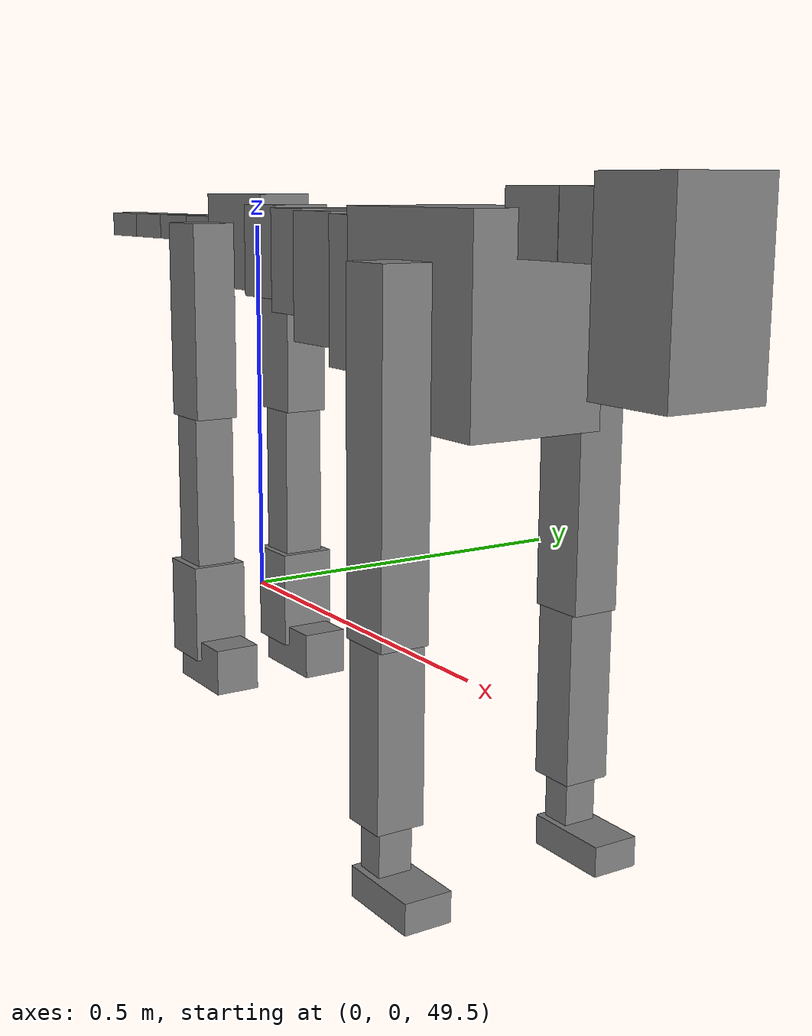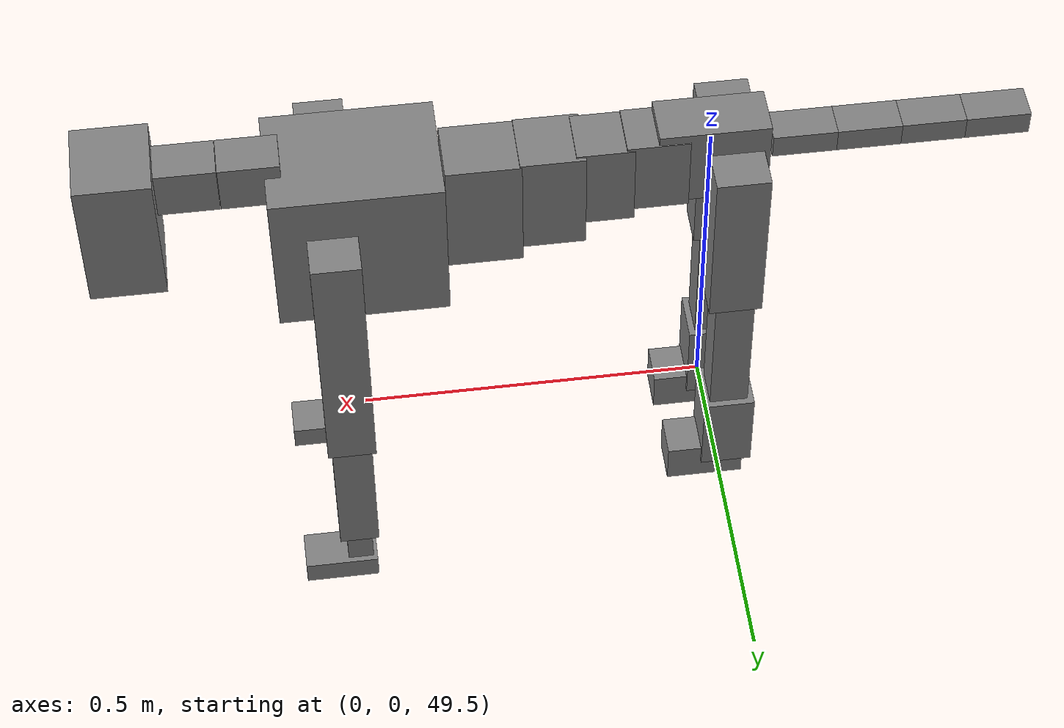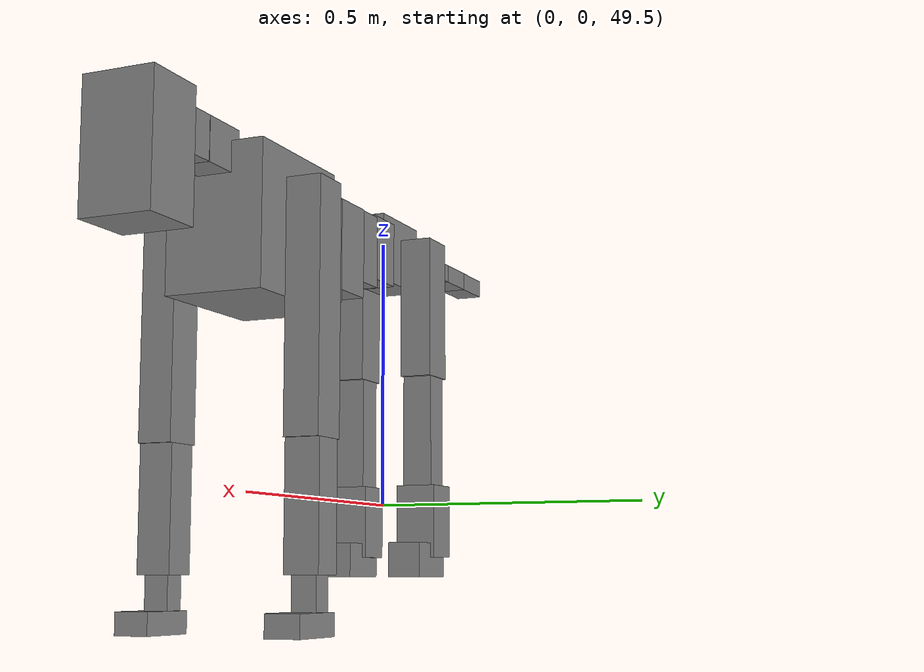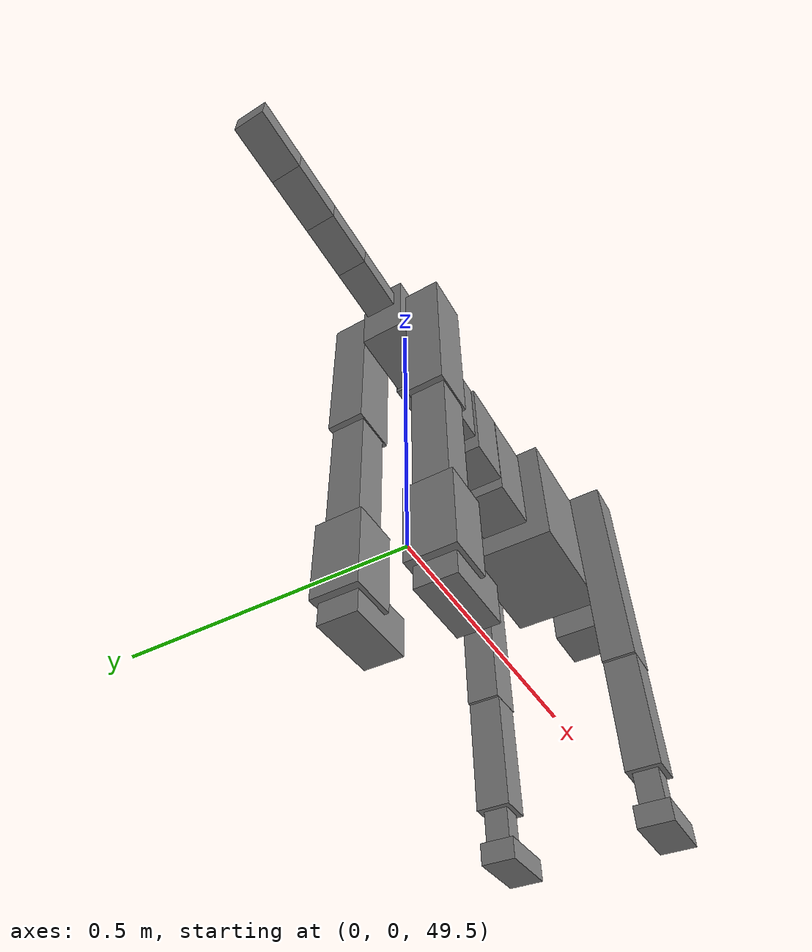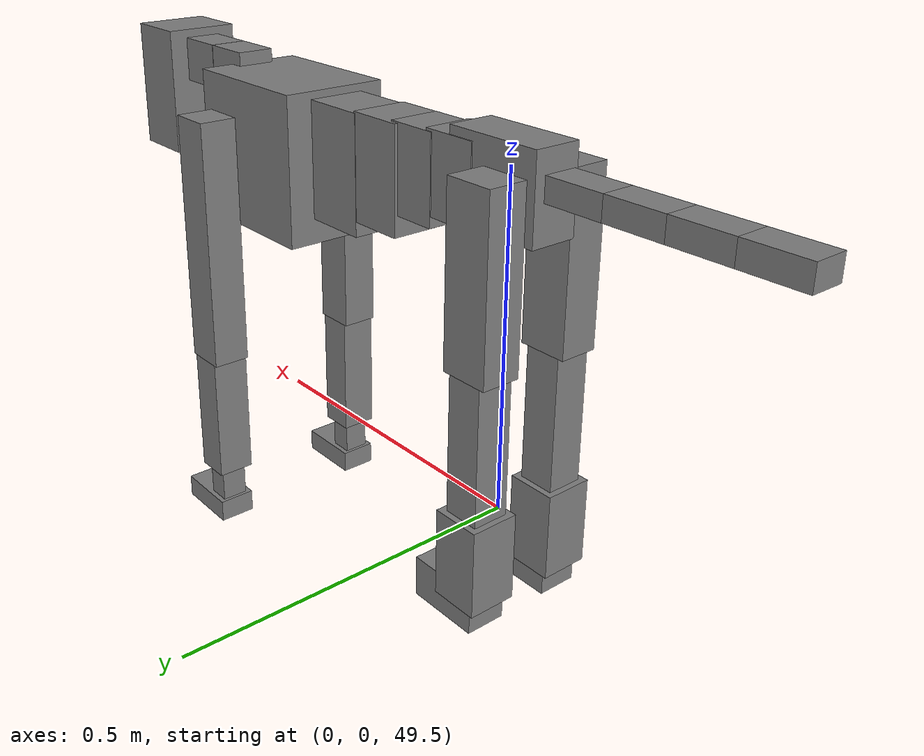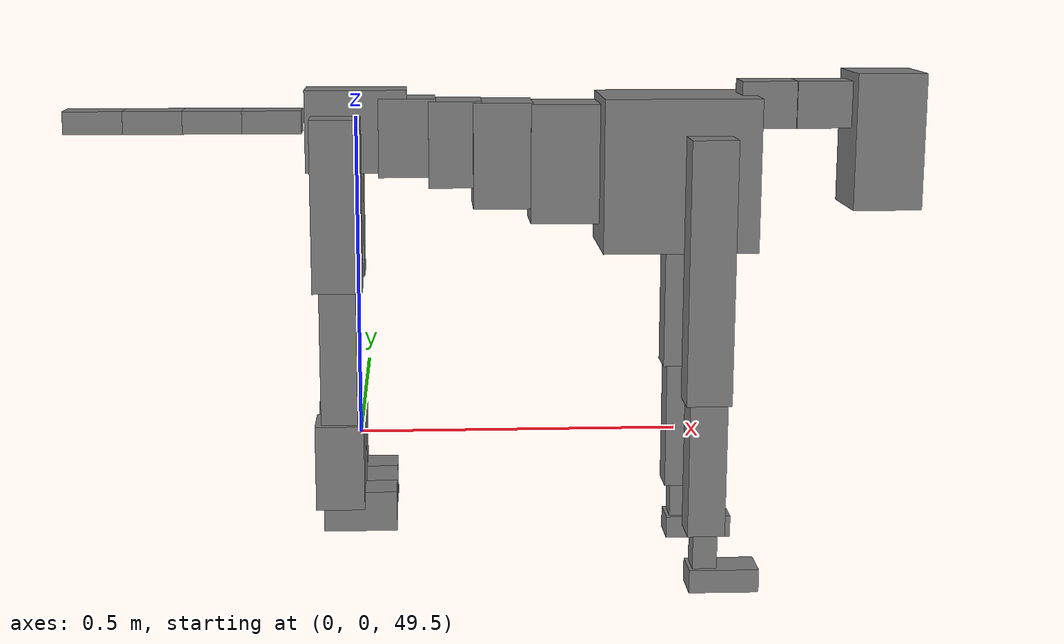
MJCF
<mujoco model="dog">

    <default>
        <joint armature="0.02" stiffness="1" damping="0.2" limited="true"/>
        <geom condim="3" friction="1 0.05 0.05" margin="0.01"/>
        <motor ctrllimited="true" ctrlrange="-1.0 1.0" forcelimited="true" gear="50"/>
    </default>

    <compiler inertiafromgeom="true" angle="radian"/>

    <option timestep="0.016" iterations="50" tolerance="1e-10" solver="Newton" jacobian="dense" cone="pyramidal"/>

    <size nconmax="20000" njmax="60000" nstack="5000000"/>
    <visual>
        <map force="0.1" zfar="30"/>
        <rgba haze="0.15 0.25 0.35 1"/>
        <quality shadowsize="2048"/>
        <global offwidth="800" offheight="800"/>
    </visual>

    <asset>
        <texture type="skybox" builtin="gradient" rgb1="0.3 0.5 0.7" rgb2="0 0 0" width="512" height="512"/>
        <texture name="texplane" type="2d" builtin="checker" rgb1=".2 .3 .4" rgb2=".1 0.15 0.2" width="512" height="512"
                 mark="cross" markrgb=".8 .8 .8"/>
        <texture name="texgeom" type="cube" builtin="flat" mark="cross" width="127" height="1278" rgb1="0.8 0.6 0.4"
                 rgb2="0.8 0.6 0.4" markrgb="1 1 1" random="0.01"/>

        <material name="matplane" reflectance="0.3" texture="texplane" texrepeat="1 1" texuniform="true"/>
        <material name="matgeom" texture="texgeom" texuniform="true" rgba="0.8 0.6 .4 1"/>
    </asset>

    <worldbody>
        <geom name="floor" pos="0 0 0" size="0 0 .25" type="plane" material="matplane" condim="3"/>

        <light directional="false" diffuse=".2 .2 .2" specular="0 0 0" pos="0 0 5" dir="0 0 -1" castshadow="false"/>
        <light mode="targetbodycom" target="torso" directional="false" diffuse=".8 .8 .8" specular="0.3 0.3 0.3"
               pos="0 0 4.0" dir="0 0 -1"/>

        <body name="root" pos="0 0 50">
            <freejoint name="root_1"/>
            <geom type="box" pos="0 0 -0.02" size="0.0774  0.0358  0.063" density="2030"/>

            <body name="spine1" pos="0.054 0 0">
                <joint name="spine1_y" axis="0 1 0" range="0 0.7" limited="true"/>
                <geom type="box" pos="0.02375 0 -0.03" size="0.04375  0.0375  0.05985" density="2030"/>

                <body name="spine2" pos="0.0612 0 0">
                    <joint name="spine2_y" axis="0 1 0" range="-0.15 0.15" limited="true"/>
                    <geom type="box" pos="0.03555  0  -0.04" size="0.04055  0.039  0.06615" density="2030"/>

                    <body name="spine3" pos="0.0730 0 0">
                        <joint name="spine3_y" axis="0 1 0" range="-0.15 0.15" limited="true"/>
                        <geom type="box" pos="0.03555  0  -0.057" size="0.04555  0.0445  0.081" density="2030"/>

                        <body name="spine4" pos="0.0780 0 0">
                            <joint name="spine4_y" axis="0 1 0" range="-0.15 0.15" limited="true"/>
                            <geom type="box" pos="0.05265  0  -0.07" size="0.05265  0.045  0.09135" density="2030"/>

                            <body name="torso" pos="0.1082 0 0">
                                <joint name="torso_y" axis="0 1 0" range="-0.15 0.15" limited="true"/>
                                <geom type="box" pos="0.11925  0  -0.085" size="0.11925  0.085  0.11745"
                                      density="2030"/>

                                <body name="neck1" pos="0.2160  0   0.0180">
                                    <joint name="neck1_y" axis="0 1 0" range="-1.2  -1" limited="true"/>
                                    <geom type="box" pos="0.0423  0  0" size="0.0423  0.03  0.036" density="2325"/>

                                    <body name="neck2" pos="0.0853  0  0">
                                        <joint name="neck2_y" axis="0 1 0" range="0.1  0" limited="true"/>
                                        <geom type="box" pos="0.0423  0  0" size="0.0423  0.03  0.036" density="2325"/>

                                        <body name="head" pos="0.0853  0  0">
                                            <joint name="head_y" axis="0 1 0" range="-0.3  -0.2" limited="true"/>
                                            <geom type="box" pos="0.0531  0  -0.055" size="0.0531  0.06  0.1044"
                                                  density="4030"/>

                                        </body>
                                    </body>
                                </body>

                                <body name="front_shoulder" pos="0.156  0   -0.0480">
                                    <joint name="front_shoulder_y" axis="0 1 0" range="-1 1.5" limited="true"/>
                                    <geom type="box" pos="0 0.13 -0.1745" size="0.0347  0.0297  0.2012" density="1158"/>
                                    <geom type="box" pos="0 -0.13 -0.1745" size="0.0347  0.0297  0.2012"
                                          density="1158"/>

                                    <body name="front_elbow" pos="0  0  -0.3491">
                                        <joint name="front_elbow_y" axis="0 1 0" range="-2 0" limited="true"/>
                                        <geom type="box" pos="0 0.13 -0.1162" size="0.0288  0.0295  0.1162"
                                              density="1081"/>
                                        <geom type="box" pos="0 -0.13 -0.1162" size="0.0288  0.0295  0.1162"
                                              density="1081"/>

                                        <body name="front_wrist" pos="0  0  -0.2324">
                                            <joint name="front_wrist_y" axis="0 1 0" range="-0.2 0" limited="true"/>
                                            <geom type="box" pos="0 0.13 -0.0349" size="0.0188  0.0209  0.0480"
                                                  density="1664"/>
                                            <geom type="box" pos="0 -0.13 -0.0349" size="0.0188  0.0209  0.0480"
                                                  density="1664"/>

                                            <body name="front_finger_end" pos="0  0  -0.0697">
                                                <joint name="front_finger_y" axis="0 1 0" range="-0.4 1"
                                                       limited="true"/>
                                                <geom type="box" pos="0.0294  0.13  -0.0032"
                                                      size="0.0539  0.0294  0.0182" density="1515"/>
                                                <geom type="box" pos="0.0294  -0.13  -0.0032"
                                                      size="0.0539  0.0294  0.0182" density="1515"/>

                                            </body>

                                        </body>
                                    </body>
                                </body>

                            </body>
                        </body>
                    </body>
                </body>
            </body>

            <body name="back_hip" pos="-0.03 0 -0.018">
                <joint name="back_hip_y" axis="0 1 0" range="-1.5 0.3" limited="true"/>
                <geom type="box" pos="0 0.07 -0.1085" size="0.0379  0.0297  0.1313" density="1154"/>
                <geom type="box" pos="0 -0.07 -0.1085" size="0.0379  0.0297  0.1313" density="1154"/>

                <body name="back_knee" pos="0  0  -0.2171">
                    <joint name="back_knee_y" axis="0 1 0" range="0 2.8" limited="true"/>
                    <geom type="box" pos="0 0.07 -0.1198" size="0.0281  0.0277  0.1354" density="1227"/>
                    <geom type="box" pos="0 -0.07 -0.1198" size="0.0281  0.0277  0.1354" density="1227"/>

                    <body name="back_ankle" pos="0  0  -0.2396">
                        <joint name="back_ankle_y" axis="0 1 0" range="-2.2 0" limited="true"/>
                        <geom type="box" pos="0 0.07 -0.0551" size="0.0374  0.0374  0.0664" density="1284"/>
                        <geom type="box" pos="0 -0.07 -0.0551" size="0.0374  0.0374  0.0664" density="1284"/>

                        <body name="back_toe_end" pos="0  0  -0.1103">
                            <joint name="back_toe_y" axis="0 1 0" range="-0.4 1" limited="true"/>
                            <geom type="box" pos="0.0307  0.07  -0.0162" size="0.0563  0.0307  0.0312" density="1515"/>
                            <geom type="box" pos="0.0307  -0.07  -0.0162" size="0.0563  0.0307  0.0312" density="1515"/>

                        </body>
                    </body>
                </body>
            </body>

            <body name="tail1" pos="-0.074 0 -0.006">
                <joint name="tail1_y" axis="0 1 0" range="-0.2 0.2" limited="true"/>
                <geom type="box" pos="-0.0536  0  0" size="0.045  0.025  0.0175" density="1587"/>

                <body name="tail2" pos="-0.09 0 0">
                    <joint name="tail2_y" axis="0 1 0" range="-0.2 0.2" limited="true"/>
                    <geom type="box" pos="-0.0536  0  0" size="0.045  0.025  0.0175" density="1587"/>

                    <body name="tail3" pos="-0.09 0 0">
                        <joint name="tail3_y" axis="0 1 0" range="-0.2 0.2" limited="true"/>
                        <geom type="box" pos="-0.0536  0  0" size="0.045  0.025  0.0175" density="1587"/>

                        <body name="tail4" pos="-0.09 0 0">
                            <joint name="tail4_y" axis="0 1 0" range="-0.2 0.2" limited="true"/>
                            <geom type="box" pos="-0.0536  0  0" size="0.045  0.025  0.0175" density="1587"/>

                        </body>
                    </body>
                </body>
            </body>
        </body>
    </worldbody>

    <actuator>
        <motor joint="spine1_y" forcerange="-150 150     "/>
        <motor joint="spine2_y" forcerange="-150 150     "/>
        <motor joint="spine3_y" forcerange="-150 150     "/>
        <motor joint="spine4_y" forcerange="-150 150     "/>
        <motor joint="torso_y" forcerange="-150 150     "/>
        <motor joint="neck1_y" forcerange="-100 100       "/>
        <motor joint="neck2_y" forcerange="-100 100       "/>
        <motor joint="head_y" forcerange="-150 150       "/>
        <motor joint="front_shoulder_y" forcerange="-157.54 140.16"/>
        <motor joint="front_elbow_y" forcerange="-163.15 151.21"/>
        <motor joint="front_wrist_y" forcerange="-114.63 52.55"/>
        <motor joint="front_finger_y" forcerange="-71.20 45.50"/>
        <motor joint="back_hip_y" forcerange="-328.79 267.34"/>
        <motor joint="back_knee_y" forcerange="-259.54 343.97"/>
        <motor joint="back_angle_y" forcerange="-248.07 249.96"/>
        <motor joint="back_toe_y" forcerange="-104.82 60.99"/>
        <motor joint="tail1_y" forcerange="-50 50     "/>
        <motor joint="tail2_y" forcerange="-50 50     "/>
        <motor joint="tail3_y" forcerange="-50 50     "/>
        <motor joint="tail4_y" forcerange="-50 50     "/>
    </actuator>
</mujoco>
